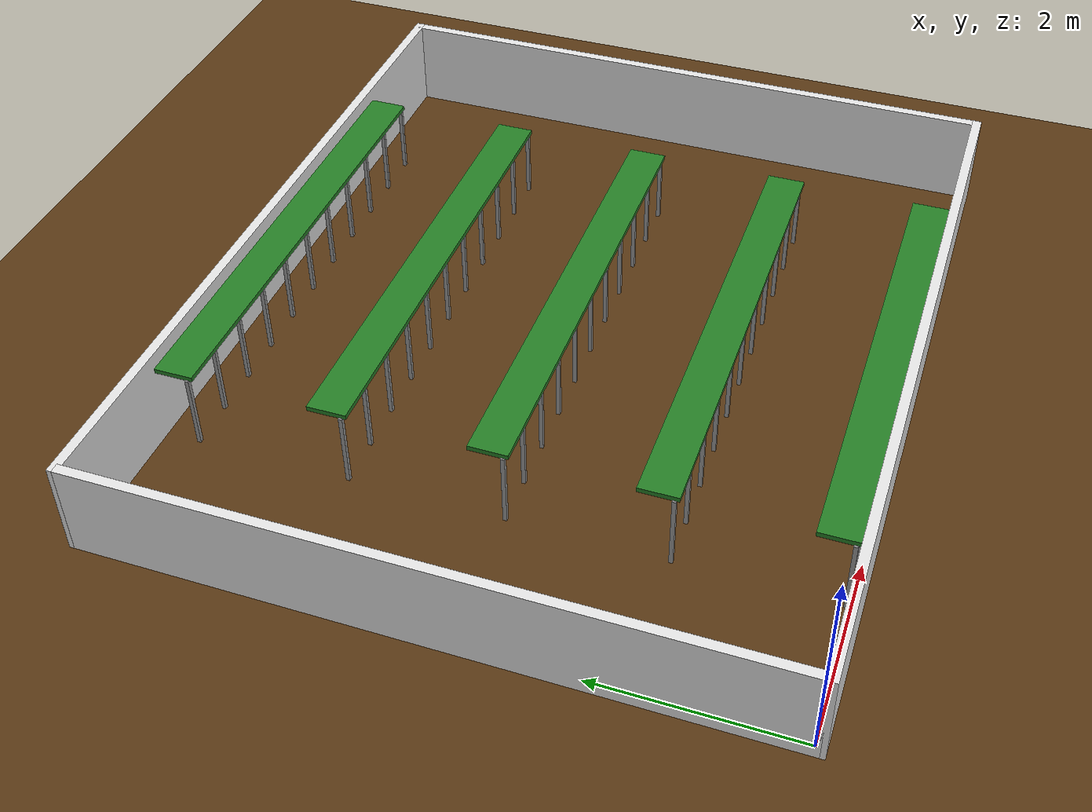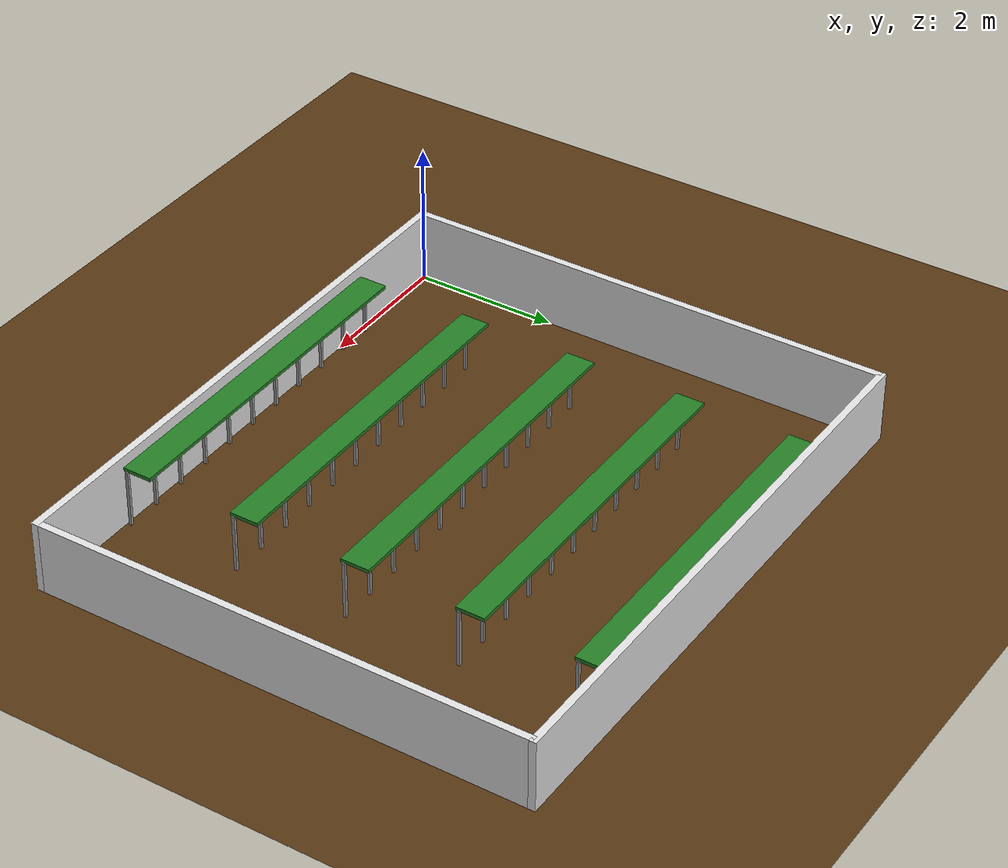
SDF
<?xml version="1.0"?>
<sdf version="1.6">
  <world name="greenhouse_4corridor">
    <include><uri>model://sun</uri></include>
    <physics type="ode">
      <real_time_update_rate>1000.0</real_time_update_rate>
      <max_step_size>0.001</max_step_size>
    </physics>

    <!-- 바닥 -->
    <model name="floor"><static>true</static><link name="link">
      <collision name="col"><geometry>
        <plane><normal>0 0 1</normal><size>20 20</size></plane>
      </geometry></collision>
      <visual name="vis"><geometry>
        <plane><normal>0 0 1</normal><size>20 20</size></plane>
      </geometry>
        <material>
          <ambient>0.35 0.22 0.08 1</ambient>
          <diffuse>0.35 0.22 0.08 1</diffuse>
        </material>
      </visual></link></model>

    <model name="wall_front"><static>true</static><pose>-0.0500 3.4000 0.5 0 0 0</pose><link name="link"><collision name="col"><geometry><box><size>0.1000 6.9000 1.0</size></box></geometry></collision><visual name="vis"><geometry><box><size>0.1000 6.9000 1.0</size></box></geometry><material><ambient>0.9 0.9 0.9 1</ambient></material></visual></link></model>
    <model name="wall_back"><static>true</static><pose>8.0500 3.4000 0.5 0 0 0</pose><link name="link"><collision name="col"><geometry><box><size>0.1000 6.9000 1.0</size></box></geometry></collision><visual name="vis"><geometry><box><size>0.1000 6.9000 1.0</size></box></geometry><material><ambient>0.9 0.9 0.9 1</ambient></material></visual></link></model>
    <model name="wall_left"><static>true</static><pose>4.0000 -0.0500 0.5 0 0 0</pose><link name="link"><collision name="col"><geometry><box><size>8.2000 0.1000 1.0</size></box></geometry></collision><visual name="vis"><geometry><box><size>8.2000 0.1000 1.0</size></box></geometry><material><ambient>0.9 0.9 0.9 1</ambient></material></visual></link></model>
    <model name="wall_right"><static>true</static><pose>4.0000 6.8500 0.5 0 0 0</pose><link name="link"><collision name="col"><geometry><box><size>8.2000 0.1000 1.0</size></box></geometry></collision><visual name="vis"><geometry><box><size>8.2000 0.1000 1.0</size></box></geometry><material><ambient>0.9 0.9 0.9 1</ambient></material></visual></link></model>

    <!-- ── 베드 1 (y=0.2) ── -->
    <model name="bed1_top"><static>true</static><pose>4.0 0.2000 0.82 0 0 0</pose><link name="link"><collision name="col"><geometry><box><size>5.0 0.4 0.05</size></box></geometry></collision><visual name="vis"><geometry><box><size>5.0 0.4 0.05</size></box></geometry><material><ambient>0.15 0.5 0.15 1</ambient><diffuse>0.15 0.5 0.15 1</diffuse></material></visual></link></model>
    <model name="bed1_col_1"><static>true</static><pose>1.5 0.0500 0.4 0 0 0</pose><link name="link"><collision name="col"><geometry><box><size>0.04 0.04 0.8</size></box></geometry></collision><visual name="vis"><geometry><box><size>0.04 0.04 0.8</size></box></geometry><material><ambient>0.6 0.6 0.6 1</ambient></material></visual></link></model>
    <model name="bed1_col_2"><static>true</static><pose>2.0 0.0500 0.4 0 0 0</pose><link name="link"><collision name="col"><geometry><box><size>0.04 0.04 0.8</size></box></geometry></collision><visual name="vis"><geometry><box><size>0.04 0.04 0.8</size></box></geometry><material><ambient>0.6 0.6 0.6 1</ambient></material></visual></link></model>
    <model name="bed1_col_3"><static>true</static><pose>2.5 0.0500 0.4 0 0 0</pose><link name="link"><collision name="col"><geometry><box><size>0.04 0.04 0.8</size></box></geometry></collision><visual name="vis"><geometry><box><size>0.04 0.04 0.8</size></box></geometry><material><ambient>0.6 0.6 0.6 1</ambient></material></visual></link></model>
    <model name="bed1_col_4"><static>true</static><pose>3.0 0.0500 0.4 0 0 0</pose><link name="link"><collision name="col"><geometry><box><size>0.04 0.04 0.8</size></box></geometry></collision><visual name="vis"><geometry><box><size>0.04 0.04 0.8</size></box></geometry><material><ambient>0.6 0.6 0.6 1</ambient></material></visual></link></model>
    <model name="bed1_col_5"><static>true</static><pose>3.5 0.0500 0.4 0 0 0</pose><link name="link"><collision name="col"><geometry><box><size>0.04 0.04 0.8</size></box></geometry></collision><visual name="vis"><geometry><box><size>0.04 0.04 0.8</size></box></geometry><material><ambient>0.6 0.6 0.6 1</ambient></material></visual></link></model>
    <model name="bed1_col_6"><static>true</static><pose>4.0 0.0500 0.4 0 0 0</pose><link name="link"><collision name="col"><geometry><box><size>0.04 0.04 0.8</size></box></geometry></collision><visual name="vis"><geometry><box><size>0.04 0.04 0.8</size></box></geometry><material><ambient>0.6 0.6 0.6 1</ambient></material></visual></link></model>
    <model name="bed1_col_7"><static>true</static><pose>4.5 0.0500 0.4 0 0 0</pose><link name="link"><collision name="col"><geometry><box><size>0.04 0.04 0.8</size></box></geometry></collision><visual name="vis"><geometry><box><size>0.04 0.04 0.8</size></box></geometry><material><ambient>0.6 0.6 0.6 1</ambient></material></visual></link></model>
    <model name="bed1_col_8"><static>true</static><pose>5.0 0.0500 0.4 0 0 0</pose><link name="link"><collision name="col"><geometry><box><size>0.04 0.04 0.8</size></box></geometry></collision><visual name="vis"><geometry><box><size>0.04 0.04 0.8</size></box></geometry><material><ambient>0.6 0.6 0.6 1</ambient></material></visual></link></model>
    <model name="bed1_col_9"><static>true</static><pose>5.5 0.0500 0.4 0 0 0</pose><link name="link"><collision name="col"><geometry><box><size>0.04 0.04 0.8</size></box></geometry></collision><visual name="vis"><geometry><box><size>0.04 0.04 0.8</size></box></geometry><material><ambient>0.6 0.6 0.6 1</ambient></material></visual></link></model>
    <model name="bed1_col_10"><static>true</static><pose>6.0 0.0500 0.4 0 0 0</pose><link name="link"><collision name="col"><geometry><box><size>0.04 0.04 0.8</size></box></geometry></collision><visual name="vis"><geometry><box><size>0.04 0.04 0.8</size></box></geometry><material><ambient>0.6 0.6 0.6 1</ambient></material></visual></link></model>
    <model name="bed1_col_11"><static>true</static><pose>6.5 0.0500 0.4 0 0 0</pose><link name="link"><collision name="col"><geometry><box><size>0.04 0.04 0.8</size></box></geometry></collision><visual name="vis"><geometry><box><size>0.04 0.04 0.8</size></box></geometry><material><ambient>0.6 0.6 0.6 1</ambient></material></visual></link></model>

    <!-- ── 베드 2 (y=1.8) ── -->
    <model name="bed2_top"><static>true</static><pose>4.0 1.8000 0.82 0 0 0</pose><link name="link"><collision name="col"><geometry><box><size>5.0 0.4 0.05</size></box></geometry></collision><visual name="vis"><geometry><box><size>5.0 0.4 0.05</size></box></geometry><material><ambient>0.15 0.5 0.15 1</ambient><diffuse>0.15 0.5 0.15 1</diffuse></material></visual></link></model>
    <model name="bed2_col_1"><static>true</static><pose>1.5 1.6500 0.4 0 0 0</pose><link name="link"><collision name="col"><geometry><box><size>0.04 0.04 0.8</size></box></geometry></collision><visual name="vis"><geometry><box><size>0.04 0.04 0.8</size></box></geometry><material><ambient>0.6 0.6 0.6 1</ambient></material></visual></link></model>
    <model name="bed2_col_2"><static>true</static><pose>2.0 1.6500 0.4 0 0 0</pose><link name="link"><collision name="col"><geometry><box><size>0.04 0.04 0.8</size></box></geometry></collision><visual name="vis"><geometry><box><size>0.04 0.04 0.8</size></box></geometry><material><ambient>0.6 0.6 0.6 1</ambient></material></visual></link></model>
    <model name="bed2_col_3"><static>true</static><pose>2.5 1.6500 0.4 0 0 0</pose><link name="link"><collision name="col"><geometry><box><size>0.04 0.04 0.8</size></box></geometry></collision><visual name="vis"><geometry><box><size>0.04 0.04 0.8</size></box></geometry><material><ambient>0.6 0.6 0.6 1</ambient></material></visual></link></model>
    <model name="bed2_col_4"><static>true</static><pose>3.0 1.6500 0.4 0 0 0</pose><link name="link"><collision name="col"><geometry><box><size>0.04 0.04 0.8</size></box></geometry></collision><visual name="vis"><geometry><box><size>0.04 0.04 0.8</size></box></geometry><material><ambient>0.6 0.6 0.6 1</ambient></material></visual></link></model>
    <model name="bed2_col_5"><static>true</static><pose>3.5 1.6500 0.4 0 0 0</pose><link name="link"><collision name="col"><geometry><box><size>0.04 0.04 0.8</size></box></geometry></collision><visual name="vis"><geometry><box><size>0.04 0.04 0.8</size></box></geometry><material><ambient>0.6 0.6 0.6 1</ambient></material></visual></link></model>
    <model name="bed2_col_6"><static>true</static><pose>4.0 1.6500 0.4 0 0 0</pose><link name="link"><collision name="col"><geometry><box><size>0.04 0.04 0.8</size></box></geometry></collision><visual name="vis"><geometry><box><size>0.04 0.04 0.8</size></box></geometry><material><ambient>0.6 0.6 0.6 1</ambient></material></visual></link></model>
    <model name="bed2_col_7"><static>true</static><pose>4.5 1.6500 0.4 0 0 0</pose><link name="link"><collision name="col"><geometry><box><size>0.04 0.04 0.8</size></box></geometry></collision><visual name="vis"><geometry><box><size>0.04 0.04 0.8</size></box></geometry><material><ambient>0.6 0.6 0.6 1</ambient></material></visual></link></model>
    <model name="bed2_col_8"><static>true</static><pose>5.0 1.6500 0.4 0 0 0</pose><link name="link"><collision name="col"><geometry><box><size>0.04 0.04 0.8</size></box></geometry></collision><visual name="vis"><geometry><box><size>0.04 0.04 0.8</size></box></geometry><material><ambient>0.6 0.6 0.6 1</ambient></material></visual></link></model>
    <model name="bed2_col_9"><static>true</static><pose>5.5 1.6500 0.4 0 0 0</pose><link name="link"><collision name="col"><geometry><box><size>0.04 0.04 0.8</size></box></geometry></collision><visual name="vis"><geometry><box><size>0.04 0.04 0.8</size></box></geometry><material><ambient>0.6 0.6 0.6 1</ambient></material></visual></link></model>
    <model name="bed2_col_10"><static>true</static><pose>6.0 1.6500 0.4 0 0 0</pose><link name="link"><collision name="col"><geometry><box><size>0.04 0.04 0.8</size></box></geometry></collision><visual name="vis"><geometry><box><size>0.04 0.04 0.8</size></box></geometry><material><ambient>0.6 0.6 0.6 1</ambient></material></visual></link></model>
    <model name="bed2_col_11"><static>true</static><pose>6.5 1.6500 0.4 0 0 0</pose><link name="link"><collision name="col"><geometry><box><size>0.04 0.04 0.8</size></box></geometry></collision><visual name="vis"><geometry><box><size>0.04 0.04 0.8</size></box></geometry><material><ambient>0.6 0.6 0.6 1</ambient></material></visual></link></model>

    <!-- ── 베드 3 (y=3.4) ── -->
    <model name="bed3_top"><static>true</static><pose>4.0 3.4000 0.82 0 0 0</pose><link name="link"><collision name="col"><geometry><box><size>5.0 0.4 0.05</size></box></geometry></collision><visual name="vis"><geometry><box><size>5.0 0.4 0.05</size></box></geometry><material><ambient>0.15 0.5 0.15 1</ambient><diffuse>0.15 0.5 0.15 1</diffuse></material></visual></link></model>
    <model name="bed3_col_1"><static>true</static><pose>1.5 3.2500 0.4 0 0 0</pose><link name="link"><collision name="col"><geometry><box><size>0.04 0.04 0.8</size></box></geometry></collision><visual name="vis"><geometry><box><size>0.04 0.04 0.8</size></box></geometry><material><ambient>0.6 0.6 0.6 1</ambient></material></visual></link></model>
    <model name="bed3_col_2"><static>true</static><pose>2.0 3.2500 0.4 0 0 0</pose><link name="link"><collision name="col"><geometry><box><size>0.04 0.04 0.8</size></box></geometry></collision><visual name="vis"><geometry><box><size>0.04 0.04 0.8</size></box></geometry><material><ambient>0.6 0.6 0.6 1</ambient></material></visual></link></model>
    <model name="bed3_col_3"><static>true</static><pose>2.5 3.2500 0.4 0 0 0</pose><link name="link"><collision name="col"><geometry><box><size>0.04 0.04 0.8</size></box></geometry></collision><visual name="vis"><geometry><box><size>0.04 0.04 0.8</size></box></geometry><material><ambient>0.6 0.6 0.6 1</ambient></material></visual></link></model>
    <model name="bed3_col_4"><static>true</static><pose>3.0 3.2500 0.4 0 0 0</pose><link name="link"><collision name="col"><geometry><box><size>0.04 0.04 0.8</size></box></geometry></collision><visual name="vis"><geometry><box><size>0.04 0.04 0.8</size></box></geometry><material><ambient>0.6 0.6 0.6 1</ambient></material></visual></link></model>
    <model name="bed3_col_5"><static>true</static><pose>3.5 3.2500 0.4 0 0 0</pose><link name="link"><collision name="col"><geometry><box><size>0.04 0.04 0.8</size></box></geometry></collision><visual name="vis"><geometry><box><size>0.04 0.04 0.8</size></box></geometry><material><ambient>0.6 0.6 0.6 1</ambient></material></visual></link></model>
    <model name="bed3_col_6"><static>true</static><pose>4.0 3.2500 0.4 0 0 0</pose><link name="link"><collision name="col"><geometry><box><size>0.04 0.04 0.8</size></box></geometry></collision><visual name="vis"><geometry><box><size>0.04 0.04 0.8</size></box></geometry><material><ambient>0.6 0.6 0.6 1</ambient></material></visual></link></model>
    <model name="bed3_col_7"><static>true</static><pose>4.5 3.2500 0.4 0 0 0</pose><link name="link"><collision name="col"><geometry><box><size>0.04 0.04 0.8</size></box></geometry></collision><visual name="vis"><geometry><box><size>0.04 0.04 0.8</size></box></geometry><material><ambient>0.6 0.6 0.6 1</ambient></material></visual></link></model>
    <model name="bed3_col_8"><static>true</static><pose>5.0 3.2500 0.4 0 0 0</pose><link name="link"><collision name="col"><geometry><box><size>0.04 0.04 0.8</size></box></geometry></collision><visual name="vis"><geometry><box><size>0.04 0.04 0.8</size></box></geometry><material><ambient>0.6 0.6 0.6 1</ambient></material></visual></link></model>
    <model name="bed3_col_9"><static>true</static><pose>5.5 3.2500 0.4 0 0 0</pose><link name="link"><collision name="col"><geometry><box><size>0.04 0.04 0.8</size></box></geometry></collision><visual name="vis"><geometry><box><size>0.04 0.04 0.8</size></box></geometry><material><ambient>0.6 0.6 0.6 1</ambient></material></visual></link></model>
    <model name="bed3_col_10"><static>true</static><pose>6.0 3.2500 0.4 0 0 0</pose><link name="link"><collision name="col"><geometry><box><size>0.04 0.04 0.8</size></box></geometry></collision><visual name="vis"><geometry><box><size>0.04 0.04 0.8</size></box></geometry><material><ambient>0.6 0.6 0.6 1</ambient></material></visual></link></model>
    <model name="bed3_col_11"><static>true</static><pose>6.5 3.2500 0.4 0 0 0</pose><link name="link"><collision name="col"><geometry><box><size>0.04 0.04 0.8</size></box></geometry></collision><visual name="vis"><geometry><box><size>0.04 0.04 0.8</size></box></geometry><material><ambient>0.6 0.6 0.6 1</ambient></material></visual></link></model>

    <!-- ── 베드 4 (y=5.0) ── -->
    <model name="bed4_top"><static>true</static><pose>4.0 5.0000 0.82 0 0 0</pose><link name="link"><collision name="col"><geometry><box><size>5.0 0.4 0.05</size></box></geometry></collision><visual name="vis"><geometry><box><size>5.0 0.4 0.05</size></box></geometry><material><ambient>0.15 0.5 0.15 1</ambient><diffuse>0.15 0.5 0.15 1</diffuse></material></visual></link></model>
    <model name="bed4_col_1"><static>true</static><pose>1.5 4.8500 0.4 0 0 0</pose><link name="link"><collision name="col"><geometry><box><size>0.04 0.04 0.8</size></box></geometry></collision><visual name="vis"><geometry><box><size>0.04 0.04 0.8</size></box></geometry><material><ambient>0.6 0.6 0.6 1</ambient></material></visual></link></model>
    <model name="bed4_col_2"><static>true</static><pose>2.0 4.8500 0.4 0 0 0</pose><link name="link"><collision name="col"><geometry><box><size>0.04 0.04 0.8</size></box></geometry></collision><visual name="vis"><geometry><box><size>0.04 0.04 0.8</size></box></geometry><material><ambient>0.6 0.6 0.6 1</ambient></material></visual></link></model>
    <model name="bed4_col_3"><static>true</static><pose>2.5 4.8500 0.4 0 0 0</pose><link name="link"><collision name="col"><geometry><box><size>0.04 0.04 0.8</size></box></geometry></collision><visual name="vis"><geometry><box><size>0.04 0.04 0.8</size></box></geometry><material><ambient>0.6 0.6 0.6 1</ambient></material></visual></link></model>
    <model name="bed4_col_4"><static>true</static><pose>3.0 4.8500 0.4 0 0 0</pose><link name="link"><collision name="col"><geometry><box><size>0.04 0.04 0.8</size></box></geometry></collision><visual name="vis"><geometry><box><size>0.04 0.04 0.8</size></box></geometry><material><ambient>0.6 0.6 0.6 1</ambient></material></visual></link></model>
    <model name="bed4_col_5"><static>true</static><pose>3.5 4.8500 0.4 0 0 0</pose><link name="link"><collision name="col"><geometry><box><size>0.04 0.04 0.8</size></box></geometry></collision><visual name="vis"><geometry><box><size>0.04 0.04 0.8</size></box></geometry><material><ambient>0.6 0.6 0.6 1</ambient></material></visual></link></model>
    <model name="bed4_col_6"><static>true</static><pose>4.0 4.8500 0.4 0 0 0</pose><link name="link"><collision name="col"><geometry><box><size>0.04 0.04 0.8</size></box></geometry></collision><visual name="vis"><geometry><box><size>0.04 0.04 0.8</size></box></geometry><material><ambient>0.6 0.6 0.6 1</ambient></material></visual></link></model>
    <model name="bed4_col_7"><static>true</static><pose>4.5 4.8500 0.4 0 0 0</pose><link name="link"><collision name="col"><geometry><box><size>0.04 0.04 0.8</size></box></geometry></collision><visual name="vis"><geometry><box><size>0.04 0.04 0.8</size></box></geometry><material><ambient>0.6 0.6 0.6 1</ambient></material></visual></link></model>
    <model name="bed4_col_8"><static>true</static><pose>5.0 4.8500 0.4 0 0 0</pose><link name="link"><collision name="col"><geometry><box><size>0.04 0.04 0.8</size></box></geometry></collision><visual name="vis"><geometry><box><size>0.04 0.04 0.8</size></box></geometry><material><ambient>0.6 0.6 0.6 1</ambient></material></visual></link></model>
    <model name="bed4_col_9"><static>true</static><pose>5.5 4.8500 0.4 0 0 0</pose><link name="link"><collision name="col"><geometry><box><size>0.04 0.04 0.8</size></box></geometry></collision><visual name="vis"><geometry><box><size>0.04 0.04 0.8</size></box></geometry><material><ambient>0.6 0.6 0.6 1</ambient></material></visual></link></model>
    <model name="bed4_col_10"><static>true</static><pose>6.0 4.8500 0.4 0 0 0</pose><link name="link"><collision name="col"><geometry><box><size>0.04 0.04 0.8</size></box></geometry></collision><visual name="vis"><geometry><box><size>0.04 0.04 0.8</size></box></geometry><material><ambient>0.6 0.6 0.6 1</ambient></material></visual></link></model>
    <model name="bed4_col_11"><static>true</static><pose>6.5 4.8500 0.4 0 0 0</pose><link name="link"><collision name="col"><geometry><box><size>0.04 0.04 0.8</size></box></geometry></collision><visual name="vis"><geometry><box><size>0.04 0.04 0.8</size></box></geometry><material><ambient>0.6 0.6 0.6 1</ambient></material></visual></link></model>

    <!-- ── 베드 5 (y=6.6) ── -->
    <model name="bed5_top"><static>true</static><pose>4.0 6.6000 0.82 0 0 0</pose><link name="link"><collision name="col"><geometry><box><size>5.0 0.4 0.05</size></box></geometry></collision><visual name="vis"><geometry><box><size>5.0 0.4 0.05</size></box></geometry><material><ambient>0.15 0.5 0.15 1</ambient><diffuse>0.15 0.5 0.15 1</diffuse></material></visual></link></model>
    <model name="bed5_col_1"><static>true</static><pose>1.5 6.4500 0.4 0 0 0</pose><link name="link"><collision name="col"><geometry><box><size>0.04 0.04 0.8</size></box></geometry></collision><visual name="vis"><geometry><box><size>0.04 0.04 0.8</size></box></geometry><material><ambient>0.6 0.6 0.6 1</ambient></material></visual></link></model>
    <model name="bed5_col_2"><static>true</static><pose>2.0 6.4500 0.4 0 0 0</pose><link name="link"><collision name="col"><geometry><box><size>0.04 0.04 0.8</size></box></geometry></collision><visual name="vis"><geometry><box><size>0.04 0.04 0.8</size></box></geometry><material><ambient>0.6 0.6 0.6 1</ambient></material></visual></link></model>
    <model name="bed5_col_3"><static>true</static><pose>2.5 6.4500 0.4 0 0 0</pose><link name="link"><collision name="col"><geometry><box><size>0.04 0.04 0.8</size></box></geometry></collision><visual name="vis"><geometry><box><size>0.04 0.04 0.8</size></box></geometry><material><ambient>0.6 0.6 0.6 1</ambient></material></visual></link></model>
    <model name="bed5_col_4"><static>true</static><pose>3.0 6.4500 0.4 0 0 0</pose><link name="link"><collision name="col"><geometry><box><size>0.04 0.04 0.8</size></box></geometry></collision><visual name="vis"><geometry><box><size>0.04 0.04 0.8</size></box></geometry><material><ambient>0.6 0.6 0.6 1</ambient></material></visual></link></model>
    <model name="bed5_col_5"><static>true</static><pose>3.5 6.4500 0.4 0 0 0</pose><link name="link"><collision name="col"><geometry><box><size>0.04 0.04 0.8</size></box></geometry></collision><visual name="vis"><geometry><box><size>0.04 0.04 0.8</size></box></geometry><material><ambient>0.6 0.6 0.6 1</ambient></material></visual></link></model>
    <model name="bed5_col_6"><static>true</static><pose>4.0 6.4500 0.4 0 0 0</pose><link name="link"><collision name="col"><geometry><box><size>0.04 0.04 0.8</size></box></geometry></collision><visual name="vis"><geometry><box><size>0.04 0.04 0.8</size></box></geometry><material><ambient>0.6 0.6 0.6 1</ambient></material></visual></link></model>
    <model name="bed5_col_7"><static>true</static><pose>4.5 6.4500 0.4 0 0 0</pose><link name="link"><collision name="col"><geometry><box><size>0.04 0.04 0.8</size></box></geometry></collision><visual name="vis"><geometry><box><size>0.04 0.04 0.8</size></box></geometry><material><ambient>0.6 0.6 0.6 1</ambient></material></visual></link></model>
    <model name="bed5_col_8"><static>true</static><pose>5.0 6.4500 0.4 0 0 0</pose><link name="link"><collision name="col"><geometry><box><size>0.04 0.04 0.8</size></box></geometry></collision><visual name="vis"><geometry><box><size>0.04 0.04 0.8</size></box></geometry><material><ambient>0.6 0.6 0.6 1</ambient></material></visual></link></model>
    <model name="bed5_col_9"><static>true</static><pose>5.5 6.4500 0.4 0 0 0</pose><link name="link"><collision name="col"><geometry><box><size>0.04 0.04 0.8</size></box></geometry></collision><visual name="vis"><geometry><box><size>0.04 0.04 0.8</size></box></geometry><material><ambient>0.6 0.6 0.6 1</ambient></material></visual></link></model>
    <model name="bed5_col_10"><static>true</static><pose>6.0 6.4500 0.4 0 0 0</pose><link name="link"><collision name="col"><geometry><box><size>0.04 0.04 0.8</size></box></geometry></collision><visual name="vis"><geometry><box><size>0.04 0.04 0.8</size></box></geometry><material><ambient>0.6 0.6 0.6 1</ambient></material></visual></link></model>
    <model name="bed5_col_11"><static>true</static><pose>6.5 6.4500 0.4 0 0 0</pose><link name="link"><collision name="col"><geometry><box><size>0.04 0.04 0.8</size></box></geometry></collision><visual name="vis"><geometry><box><size>0.04 0.04 0.8</size></box></geometry><material><ambient>0.6 0.6 0.6 1</ambient></material></visual></link></model>

  </world>
</sdf>
